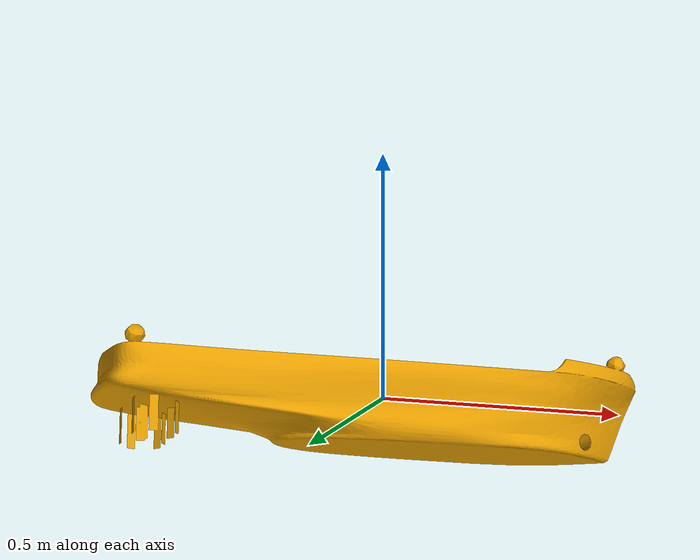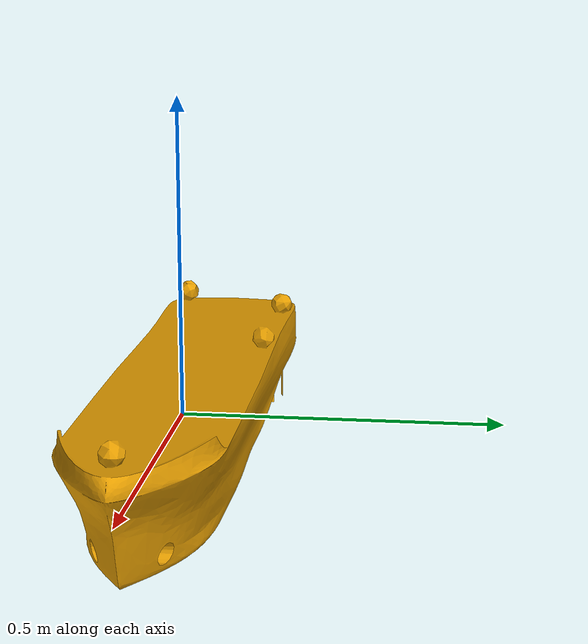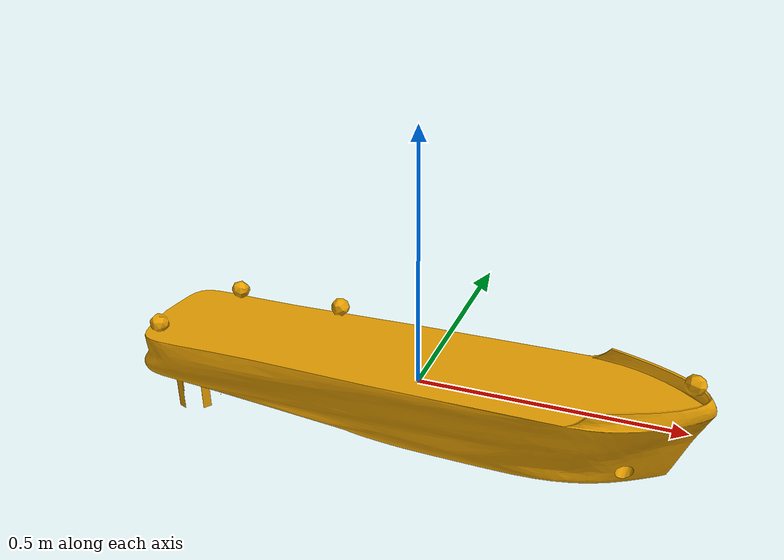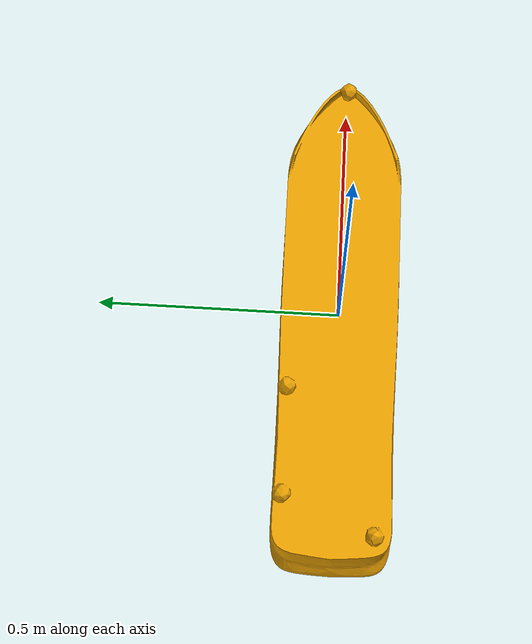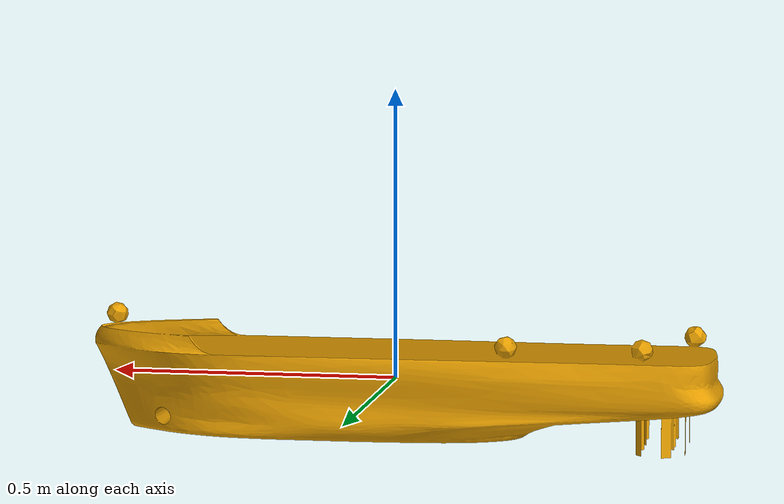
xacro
<?xml version="1.0"?>
<robot xmlns:xacro="http://www.ros.org/wiki/xacro" name="cybership_enterprise">

    <link name="base_link">
        <visual>
            <origin
                xyz="0.05 0.0 0.05"
                rpy="1.5707963267948966 0.0 1.5707963267948966"
            />

            <geometry>
                <mesh
                    filename="package://cybership_description/meshes/enterprise/model.stl"
                    scale="0.01 0.01 0.01"
                />

            </geometry>
        </visual>
    </link>

    <link name="stern_port_thruster_link" />
    <joint name="base_stern_port_thruster_joint" type="fixed">
        <parent link="base_link" />
        <child link="stern_port_thruster_link" />
        <origin xyz="-0.4574 0.055 -0.1" rpy="0 0 0" />
    </joint>

    <link name="stern_starboard_thruster_link" />
    <joint name="stern_starboard_thruster_joint" type="fixed">
        <parent link="base_link" />
        <child link="stern_starboard_thruster_link" />
        <origin xyz="-0.4574 -0.055 -0.1" rpy="0 0 0" />
    </joint>

    <link name="bow_tunnel_thruster_link" />
    <joint name="bow_tunnel_thruster_joint" type="fixed">
        <parent link="base_link" />
        <child link="bow_tunnel_thruster_link" />
        <origin xyz="0.3875 0 -0.05" rpy="0 0 1.5707963267948966" />
    </joint>

    <link name="imu_link"></link>
    <joint name="imu_joint" type="fixed">
        <parent link="base_link" />
        <child link="imu_link" />
        <origin xyz="0.4 0 0.1" rpy="0 0 0" />
    </joint>

    <link name="mocap_link"></link>
    <joint name="mocap_link_joint" type="fixed">
        <parent link="base_link" />
        <child link="mocap_link" />
        <origin xyz="0.0 0.0 0.0" rpy="0.0 3.14159265358979 1.5707963267948966" />
    </joint>
</robot>
